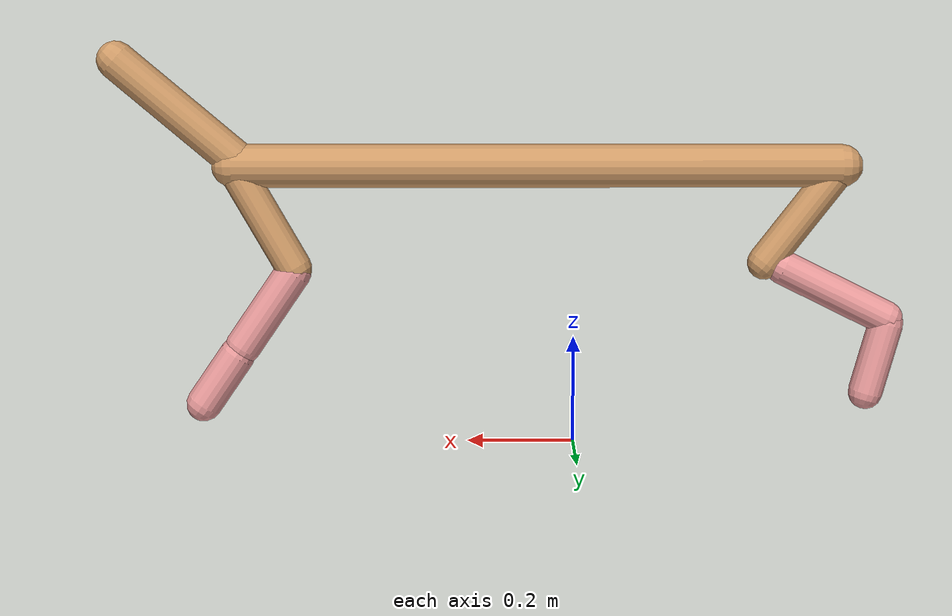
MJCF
<mujoco model="cheetah">
  <compiler angle="radian" coordinate="local" inertiafromgeom="true" settotalmass="14" />
  <default>
    <joint armature=".1" damping=".01" limited="true" solimplimit="0 .8 .03" solreflimit=".02 1" stiffness="8" />
    <geom conaffinity="0" condim="3" contype="1" friction="0.8 .1 .1" rgba="0.8 0.6 .4 1" solimp="0.0 0.8 0.01" solref="0.02 1" />
    <motor ctrllimited="true" ctrlrange="-1 1" />
  </default>
  <size nstack="300000" nuser_geom="1" />
  <option gravity="0 0 -9.81" timestep="0.01" />
  <worldbody>
    <body name="torso" pos="0.0 0.0 0.525324737969068">
      <joint armature="0" axis="1 0 0" damping="0" limited="false" name="ignorex" pos="0 0 0" stiffness="0" type="slide" />
      <joint armature="0" axis="0 0 1" damping="0" limited="false" name="ignorez" pos="0 0 0" stiffness="0" type="slide" />
      <joint armature="0" axis="0 1 0" damping="0" limited="false" name="ignorey" pos="0 0 0" stiffness="0" type="hinge" />
      <geom fromto="-0.5 0.0 0.0 0.6382783487975778 0.0 0.0" name="torso" size="0.04104039147949555" type="capsule" />
      <geom axisangle="0 1 0 .87" name="head" pos="0.7382783487975778 0.0 0.1" size="0.03663871477861914 0.15" type="capsule" />

      <body name="bthigh" pos="-.5 0 0">
        <joint axis="0 1 0" damping="6" name="bthigh" pos="0 0 0" range="-.52 1.05" stiffness="240" type="hinge" />
        <geom axisangle="0 1 0 -3.8" name="bthigh" pos="0.07615941593760384 0.0 -0.09900724071888498" size="0.03252337563490531 0.10589853485745937" type="capsule" />
        <body name="bshin" pos="0.11231883187520766 0.0 -0.18801448143776994">
          <joint axis="0 1 0" damping="4.5" name="bshin" pos="0 0 0" range="-.785 .785" stiffness="180" type="hinge" />
          <geom axisangle="0 1 0 -2.03" name="bshin" pos="-0.10382060658818235 0.0 -0.05191030329409117" rgba="0.9 0.6 0.6 1" size="0.03252337563490531 0.10955020847323384" type="capsule" />
          <body name="bfoot" pos="-0.2076412131763647 0.0 -0.10382060658818235">
            <joint axis="0 1 0" damping="3" name="bfoot" pos="0 0 0" range="-.4 .785" stiffness="120" type="hinge" />
            <geom axisangle="0 1 0 -.27" name="bfoot" pos="0.022510275084674094 0.0 -0.07278322277377958" rgba="0.9 0.6 0.6 1" size="0.03252337563490531 0.06865146397655987" type="capsule" />
            <inertial mass="10" />
          </body>
        </body>
      </body>
      <body name="fthigh" pos="0.6382783487975778 0.0 0.0">
        <joint axis="0 1 0" damping="4.5" name="fthigh" pos="0 0 0" range="-1.5 0.8" stiffness="180" type="hinge" />
        <geom axisangle="0 1 0 .52" name="fthigh" pos="-0.05775540182640431 0.0 -0.09900926027383594" size="0.0339190126342916 0.10869894367142893" type="capsule" />
        <body name="fshin" pos="-0.11551080365280862 0.0 -0.19801852054767188">
          <joint axis="0 1 0" damping="3" name="fshin" pos="0 0 0" range="-1.2 1.1" stiffness="120" type="hinge" />
          <geom axisangle="0 1 0 -.6" name="fshin" pos="0.05366035995146834 0.0 -0.0742989599328023" rgba="0.9 0.6 0.6 1" size="0.0339190126342916 0.08663224082083809" type="capsule" />
          <body name="ffoot" pos="0.10732071990293668 0.0 -0.1485979198656046">
            <joint axis="0 1 0" damping="1.5" name="ffoot" pos="0 0 0" range="-3.1 -0.3" stiffness="60" type="hinge" />
            <geom axisangle="0 1 0 -.6" name="ffoot" pos="0.0380836943754675 0.0 -0.05924130236183834" rgba="0.9 0.6 0.6 1" size="0.0339190126342916 0.05720997035338365" type="capsule" />
            <inertial mass="10" />
          </body>
        </body>
      </body>
    </body>
  </worldbody>
  <actuator>
    <motor gear="120" joint="bthigh" name="bthigh" />
    <motor gear="90" joint="bshin" name="bshin" />
    <motor gear="60" joint="bfoot" name="bfoot" />
    <motor gear="120" joint="fthigh" name="fthigh" />
    <motor gear="60" joint="fshin" name="fshin" />
    <motor gear="30" joint="ffoot" name="ffoot" />
  </actuator>
</mujoco>
